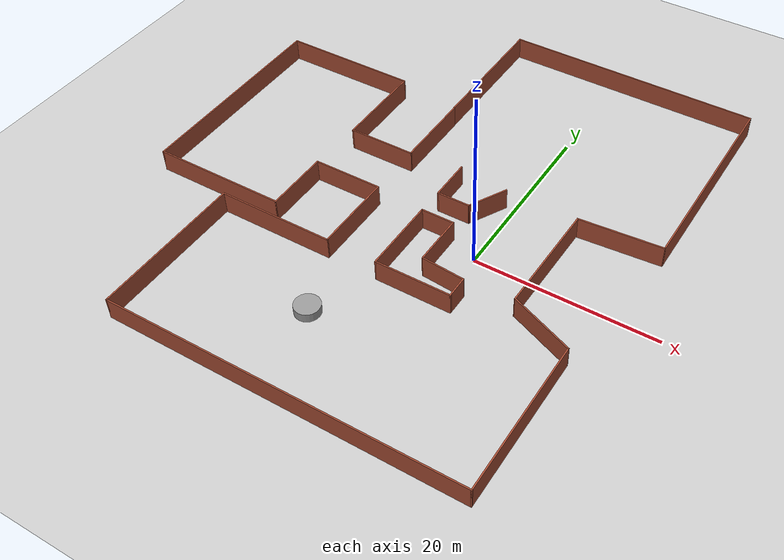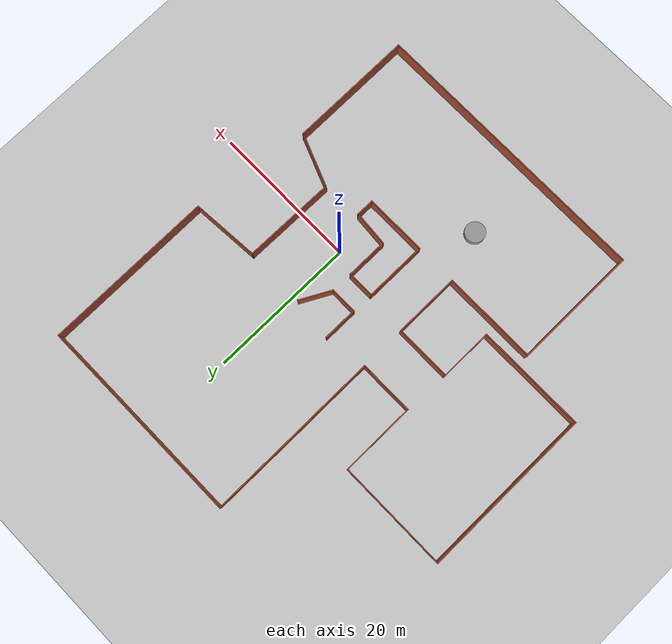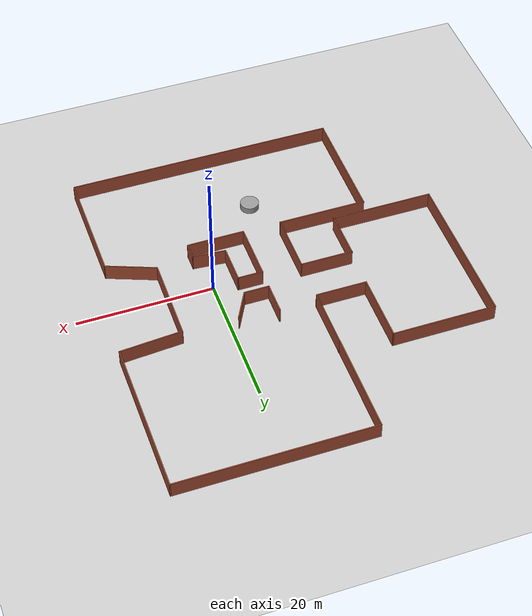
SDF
<sdf version="1.7">
 <world name="default">
  <light name="sun" type="directional">
   <pose>0 0 10 0 -0 0</pose>
   <diffuse>0.8 0.8 0.8 1</diffuse>
   <specular>0.2 0.2 0.2 1</specular>
   <attenuation>
    <range>1000</range>
    <constant>0.9</constant>
    <linear>0.01</linear>
    <quadratic>0.001</quadratic>
   </attenuation>
   <direction>-0.5 0.1 -0.9</direction>
   <spot><inner_angle>0</inner_angle><outer_angle>0</outer_angle><falloff>0</falloff></spot>
  </light>
  <model name="ground_plane">
   <static>1</static>
   <link name="link">
    <collision name="collision">
     <geometry><plane><normal>0 0 1</normal><size>100 100</size></plane></geometry>
     <surface>
      <contact><collide_bitmask>65535</collide_bitmask></contact>
      <friction><ode><mu>100</mu><mu2>50</mu2></ode></friction>
     </surface>
    </collision>
    <visual name="visual">
     <cast_shadows>0</cast_shadows>
     <geometry><plane><normal>0 0 1</normal><size>100 100</size></plane></geometry>
     <material>
      <script><uri>file://media/materials/scripts/gazebo.material</uri><name>Gazebo/Grey</name></script>
     </material>
    </visual>
   </link>
  </model>
  <gravity>0 0 -9.8</gravity>
  <magnetic_field>6e-06 2.3e-05 -4.2e-05</magnetic_field>
  <atmosphere type="adiabatic"/>
  <physics type="ode">
   <max_step_size>0.001</max_step_size>
   <real_time_factor>1</real_time_factor>
   <real_time_update_rate>1000</real_time_update_rate>
  </physics>
  <scene><ambient>0.4 0.4 0.4 1</ambient><background>0.7 0.7 0.7 1</background><shadows>1</shadows></scene>
  <audio><device>default</device></audio>
  <spherical_coordinates>
   <surface_model>EARTH_WGS84</surface_model>
   <latitude_deg>0</latitude_deg>
   <longitude_deg>0</longitude_deg>
   <elevation>0</elevation>
   <heading_deg>0</heading_deg>
  </spherical_coordinates>
  <model name="big_map_model">
   <pose>-9.41634 4.0467 0 0 -0 0</pose>
   <link name="Wall_21">
    <collision name="Wall_21_Collision">
     <geometry><box><size>9 0.15 2.5</size></box></geometry>
     <pose>0 0 1.25 0 -0 0</pose>
    </collision>
    <visual name="Wall_21_Visual">
     <pose>0 0 1.25 0 -0 0</pose>
     <geometry><box><size>9 0.15 2.5</size></box></geometry>
     <material>
      <script><uri>file://media/materials/scripts/gazebo.material</uri><name>Gazebo/Bricks</name></script>
      <ambient>1 1 1 1</ambient>
     </material>
     <meta><layer>0</layer></meta>
    </visual>
    <pose>-3.06516 8.3671 0 0 -0 -1.5708</pose>
   </link>
   <link name="Wall_22">
    <collision name="Wall_22_Collision">
     <geometry><box><size>7.5 0.15 2.5</size></box></geometry>
     <pose>0 0 1.25 0 -0 0</pose>
    </collision>
    <visual name="Wall_22_Visual">
     <pose>0 0 1.25 0 -0 0</pose>
     <geometry><box><size>7.5 0.15 2.5</size></box></geometry>
     <material>
      <script><uri>file://media/materials/scripts/gazebo.material</uri><name>Gazebo/Bricks</name></script>
      <ambient>1 1 1 1</ambient>
     </material>
     <meta><layer>0</layer></meta>
    </visual>
    <pose>-6.74016 3.9421 0 0 -0 3.14159</pose>
   </link>
   <link name="Wall_23">
    <collision name="Wall_23_Collision">
     <geometry><box><size>10.25 0.15 2.5</size></box></geometry>
     <pose>0 0 1.25 0 -0 0</pose>
    </collision>
    <visual name="Wall_23_Visual">
     <pose>0 0 1.25 0 -0 0</pose>
     <geometry><box><size>10.25 0.15 2.5</size></box></geometry>
     <material>
      <script><uri>file://media/materials/scripts/gazebo.material</uri><name>Gazebo/Bricks</name></script>
      <ambient>1 1 1 1</ambient>
     </material>
     <meta><layer>0</layer></meta>
    </visual>
    <pose>-10.4152 8.9921 0 0 -0 1.5708</pose>
   </link>
   <link name="Wall_24">
    <collision name="Wall_24_Collision">
     <geometry><box><size>15.25 0.15 2.5</size></box></geometry>
     <pose>0 0 1.25 0 -0 0</pose>
    </collision>
    <visual name="Wall_24_Visual">
     <pose>0 0 1.25 0 -0 0</pose>
     <geometry><box><size>15.25 0.15 2.5</size></box></geometry>
     <material>
      <script><uri>file://media/materials/scripts/gazebo.material</uri><name>Gazebo/Bricks</name></script>
      <ambient>1 1 1 1</ambient>
     </material>
     <meta><layer>0</layer></meta>
    </visual>
    <pose>-17.9652 14.0421 0 0 -0 3.14159</pose>
   </link>
   <link name="Wall_25">
    <collision name="Wall_25_Collision">
     <geometry><box><size>23.5 0.15 2.5</size></box></geometry>
     <pose>0 0 1.25 0 -0 0</pose>
    </collision>
    <visual name="Wall_25_Visual">
     <pose>0 0 1.25 0 -0 0</pose>
     <geometry><box><size>23.5 0.15 2.5</size></box></geometry>
     <material>
      <script><uri>file://media/materials/scripts/gazebo.material</uri><name>Gazebo/Bricks</name></script>
      <ambient>1 1 1 1</ambient>
     </material>
     <meta><layer>0</layer></meta>
    </visual>
    <pose>-25.5152 2.3671 0 0 -0 -1.5708</pose>
   </link>
   <link name="Wall_28">
    <collision name="Wall_28_Collision">
     <geometry><box><size>15 0.15 2.5</size></box></geometry>
     <pose>0 0 1.25 0 -0 0</pose>
    </collision>
    <visual name="Wall_28_Visual">
     <pose>0 0 1.25 0 -0 0</pose>
     <geometry><box><size>15 0.15 2.5</size></box></geometry>
     <material>
      <script><uri>file://media/materials/scripts/gazebo.material</uri><name>Gazebo/Bricks</name></script>
      <ambient>1 1 1 1</ambient>
     </material>
     <meta><layer>0</layer></meta>
    </visual>
    <pose>-18.0902 -9.3079 0 0 -0 0</pose>
   </link>
   <link name="Wall_29">
    <collision name="Wall_29_Collision">
     <geometry><box><size>7.25 0.15 2.5</size></box></geometry>
     <pose>0 0 1.25 0 -0 0</pose>
    </collision>
    <visual name="Wall_29_Visual">
     <pose>0 0 1.25 0 -0 0</pose>
     <geometry><box><size>7.25 0.15 2.5</size></box></geometry>
     <material>
      <script><uri>file://media/materials/scripts/gazebo.material</uri><name>Gazebo/Bricks</name></script>
      <ambient>1 1 1 1</ambient>
     </material>
     <meta><layer>0</layer></meta>
    </visual>
    <pose>-10.6652 -5.7579 0 0 -0 1.5708</pose>
   </link>
   <link name="Wall_30">
    <collision name="Wall_30_Collision">
     <geometry><box><size>7.75 0.15 2.5</size></box></geometry>
     <pose>0 0 1.25 0 -0 0</pose>
    </collision>
    <visual name="Wall_30_Visual">
     <pose>0 0 1.25 0 -0 0</pose>
     <geometry><box><size>7.75 0.15 2.5</size></box></geometry>
     <material>
      <script><uri>file://media/materials/scripts/gazebo.material</uri><name>Gazebo/Bricks</name></script>
      <ambient>1 1 1 1</ambient>
     </material>
     <meta><layer>0</layer></meta>
    </visual>
    <pose>-6.86516 -2.2079 0 0 -0 0</pose>
   </link>
   <link name="Wall_31">
    <collision name="Wall_31_Collision">
     <geometry><box><size>9 0.15 2.5</size></box></geometry>
     <pose>0 0 1.25 0 -0 0</pose>
    </collision>
    <visual name="Wall_31_Visual">
     <pose>0 0 1.25 0 -0 0</pose>
     <geometry><box><size>9 0.15 2.5</size></box></geometry>
     <material>
      <script><uri>file://media/materials/scripts/gazebo.material</uri><name>Gazebo/Bricks</name></script>
      <ambient>1 1 1 1</ambient>
     </material>
     <meta><layer>0</layer></meta>
    </visual>
    <pose>-3.06516 -6.6329 0 0 -0 -1.5708</pose>
   </link>
   <link name="Wall_32">
    <collision name="Wall_32_Collision">
     <geometry><box><size>13 0.15 2.5</size></box></geometry>
     <pose>0 0 1.25 0 -0 0</pose>
    </collision>
    <visual name="Wall_32_Visual">
     <pose>0 0 1.25 0 -0 0</pose>
     <geometry><box><size>13 0.15 2.5</size></box></geometry>
     <material>
      <script><uri>file://media/materials/scripts/gazebo.material</uri><name>Gazebo/Bricks</name></script>
      <ambient>1 1 1 1</ambient>
     </material>
     <meta><layer>0</layer></meta>
    </visual>
    <pose>-9.49016 -11.0579 0 0 -0 3.14159</pose>
   </link>
   <link name="Wall_33">
    <collision name="Wall_33_Collision">
     <geometry><box><size>17 0.15 2.5</size></box></geometry>
     <pose>0 0 1.25 0 -0 0</pose>
    </collision>
    <visual name="Wall_33_Visual">
     <pose>0 0 1.25 0 -0 0</pose>
     <geometry><box><size>17 0.15 2.5</size></box></geometry>
     <material>
      <script><uri>file://media/materials/scripts/gazebo.material</uri><name>Gazebo/Bricks</name></script>
      <ambient>1 1 1 1</ambient>
     </material>
     <meta><layer>0</layer></meta>
    </visual>
    <pose>-15.9152 -19.4829 0 0 -0 -1.5708</pose>
   </link>
   <link name="Wall_34">
    <collision name="Wall_34_Collision">
     <geometry><box><size>39.25 0.15 2.5</size></box></geometry>
     <pose>0 0 1.25 0 -0 0</pose>
    </collision>
    <visual name="Wall_34_Visual">
     <pose>0 0 1.25 0 -0 0</pose>
     <geometry><box><size>39.25 0.15 2.5</size></box></geometry>
     <material>
      <script><uri>file://media/materials/scripts/gazebo.material</uri><name>Gazebo/Bricks</name></script>
      <ambient>1 1 1 1</ambient>
     </material>
     <meta><layer>0</layer></meta>
    </visual>
    <pose>3.63484 -27.9079 0 0 -0 0</pose>
   </link>
   <link name="Wall_35">
    <collision name="Wall_35_Collision">
     <geometry><box><size>17 0.15 2.5</size></box></geometry>
     <pose>0 0 1.25 0 -0 0</pose>
    </collision>
    <visual name="Wall_35_Visual">
     <pose>0 0 1.25 0 -0 0</pose>
     <geometry><box><size>17 0.15 2.5</size></box></geometry>
     <material>
      <script><uri>file://media/materials/scripts/gazebo.material</uri><name>Gazebo/Bricks</name></script>
      <ambient>1 1 1 1</ambient>
     </material>
     <meta><layer>0</layer></meta>
    </visual>
    <pose>23.1848 -19.4829 0 0 -0 1.5708</pose>
   </link>
   <link name="Wall_37">
    <collision name="Wall_37_Collision">
     <geometry><box><size>8.5 0.15 2.5</size></box></geometry>
     <pose>0 0 1.25 0 -0 0</pose>
    </collision>
    <visual name="Wall_37_Visual">
     <pose>0 0 1.25 0 -0 0</pose>
     <geometry><box><size>8.5 0.15 2.5</size></box></geometry>
     <material>
      <script><uri>file://media/materials/scripts/gazebo.material</uri><name>Gazebo/Bricks</name></script>
      <ambient>1 1 1 1</ambient>
     </material>
     <meta><layer>0</layer></meta>
    </visual>
    <pose>2.58484 -6.8829 0 0 -0 1.5708</pose>
   </link>
   <link name="Wall_38">
    <collision name="Wall_38_Collision">
     <geometry><box><size>3.75 0.15 2.5</size></box></geometry>
     <pose>0 0 1.25 0 -0 0</pose>
    </collision>
    <visual name="Wall_38_Visual">
     <pose>0 0 1.25 0 -0 0</pose>
     <geometry><box><size>3.75 0.15 2.5</size></box></geometry>
     <material>
      <script><uri>file://media/materials/scripts/gazebo.material</uri><name>Gazebo/Bricks</name></script>
      <ambient>1 1 1 1</ambient>
     </material>
     <meta><layer>0</layer></meta>
    </visual>
    <pose>4.38484 -2.7079 0 0 -0 0</pose>
   </link>
   <link name="Wall_39">
    <collision name="Wall_39_Collision">
     <geometry><box><size>5.75 0.15 2.5</size></box></geometry>
     <pose>0 0 1.25 0 -0 0</pose>
    </collision>
    <visual name="Wall_39_Visual">
     <pose>0 0 1.25 0 -0 0</pose>
     <geometry><box><size>5.75 0.15 2.5</size></box></geometry>
     <material>
      <script><uri>file://media/materials/scripts/gazebo.material</uri><name>Gazebo/Bricks</name></script>
      <ambient>1 1 1 1</ambient>
     </material>
     <meta><layer>0</layer></meta>
    </visual>
    <pose>6.18484 -5.5079 0 0 -0 -1.5708</pose>
   </link>
   <link name="Wall_41">
    <collision name="Wall_41_Collision">
     <geometry><box><size>12.5993 0.15 2.5</size></box></geometry>
     <pose>0 0 1.25 0 -0 0</pose>
    </collision>
    <visual name="Wall_41_Visual">
     <pose>0 0 1.25 0 -0 0</pose>
     <geometry><box><size>12.5993 0.15 2.5</size></box></geometry>
     <material>
      <script><uri>file://media/materials/scripts/gazebo.material</uri><name>Gazebo/Bricks</name></script>
      <ambient>1 1 1 1</ambient>
     </material>
     <meta><layer>0</layer></meta>
    </visual>
    <pose>16.3728 -2.08388 0 0 -0 1.55667</pose>
   </link>
   <link name="Wall_43">
    <collision name="Wall_43_Collision">
     <geometry><box><size>4.60828 0.15 2.5</size></box></geometry>
     <pose>0 0 1.25 0 -0 0</pose>
    </collision>
    <visual name="Wall_43_Visual">
     <pose>0 0 1.25 0 -0 0</pose>
     <geometry><box><size>4.60828 0.15 2.5</size></box></geometry>
     <material>
      <script><uri>file://media/materials/scripts/gazebo.material</uri><name>Gazebo/Bricks</name></script>
      <ambient>1 1 1 1</ambient>
     </material>
     <meta><layer>0</layer></meta>
    </visual>
    <pose>7.31029 2.17402 0 0 -0 -2.06149</pose>
   </link>
   <link name="Wall_44">
    <collision name="Wall_44_Collision">
     <geometry><box><size>3.75 0.15 2.5</size></box></geometry>
     <pose>0 0 1.25 0 -0 0</pose>
    </collision>
    <visual name="Wall_44_Visual">
     <pose>0 0 1.25 0 -0 0</pose>
     <geometry><box><size>3.75 0.15 2.5</size></box></geometry>
     <material>
      <script><uri>file://media/materials/scripts/gazebo.material</uri><name>Gazebo/Bricks</name></script>
      <ambient>1 1 1 1</ambient>
     </material>
     <meta><layer>0</layer></meta>
    </visual>
    <pose>4.45984 0.2079 0 0 -0 3.14159</pose>
   </link>
   <link name="Wall_47">
    <collision name="Wall_47_Collision">
     <geometry><box><size>4.75 0.15 2.5</size></box></geometry>
     <pose>0 0 1.25 0 -0 0</pose>
    </collision>
    <visual name="Wall_47_Visual">
     <pose>0 0 1.25 0 -0 0</pose>
     <geometry><box><size>4.75 0.15 2.5</size></box></geometry>
     <material>
      <script><uri>file://media/materials/scripts/gazebo.material</uri><name>Gazebo/Bricks</name></script>
      <ambient>1 1 1 1</ambient>
     </material>
     <meta><layer>0</layer></meta>
    </visual>
    <pose>2.65984 2.5079 0 0 -0 1.5708</pose>
   </link>
   <link name="Wall_49">
    <collision name="Wall_49_Collision">
     <geometry><box><size>23.25 0.15 2.5</size></box></geometry>
     <pose>0 0 1.25 0 -0 0</pose>
    </collision>
    <visual name="Wall_49_Visual">
     <pose>0 0 1.25 0 -0 0</pose>
     <geometry><box><size>23.25 0.15 2.5</size></box></geometry>
     <material>
      <script><uri>file://media/materials/scripts/gazebo.material</uri><name>Gazebo/Bricks</name></script>
      <ambient>1 1 1 1</ambient>
     </material>
     <meta><layer>0</layer></meta>
    </visual>
    <pose>25.5098 16.3579 0 0 -0 1.5708</pose>
   </link>
   <link name="Wall_50">
    <collision name="Wall_50_Collision">
     <geometry><box><size>28.75 0.15 2.5</size></box></geometry>
     <pose>0 0 1.25 0 -0 0</pose>
    </collision>
    <visual name="Wall_50_Visual">
     <pose>0 0 1.25 0 -0 0</pose>
     <geometry><box><size>28.75 0.15 2.5</size></box></geometry>
     <material>
      <script><uri>file://media/materials/scripts/gazebo.material</uri><name>Gazebo/Bricks</name></script>
      <ambient>1 1 1 1</ambient>
     </material>
     <meta><layer>0</layer></meta>
    </visual>
    <pose>11.2098 27.9079 0 0 -0 3.14159</pose>
   </link>
   <link name="Wall_51">
    <collision name="Wall_51_Collision">
     <geometry><box><size>15.25 0.15 2.5</size></box></geometry>
     <pose>0 0 1.25 0 -0 0</pose>
    </collision>
    <visual name="Wall_51_Visual">
     <pose>0 0 1.25 0 -0 0</pose>
     <geometry><box><size>15.25 0.15 2.5</size></box></geometry>
     <material>
      <script><uri>file://media/materials/scripts/gazebo.material</uri><name>Gazebo/Bricks</name></script>
      <ambient>1 1 1 1</ambient>
     </material>
     <meta><layer>0</layer></meta>
    </visual>
    <pose>-3.09016 20.3579 0 0 -0 -1.5708</pose>
   </link>
   <link name="Wall_53">
    <collision name="Wall_53_Collision">
     <geometry><box><size>9.22371 0.15 2.5</size></box></geometry>
     <pose>0 0 1.25 0 -0 0</pose>
    </collision>
    <visual name="Wall_53_Visual">
     <pose>0 0 1.25 0 -0 0</pose>
     <geometry><box><size>9.22371 0.15 2.5</size></box></geometry>
     <material>
      <script><uri>file://media/materials/scripts/gazebo.material</uri><name>Gazebo/Bricks</name></script>
      <ambient>1 1 1 1</ambient>
     </material>
     <meta><layer>0</layer></meta>
    </visual>
    <pose>20.9853 4.47402 0 0 -0 0.07366</pose>
   </link>
   <link name="Wall_55">
    <collision name="Wall_55_Collision">
     <geometry><box><size>8.5 0.15 2.5</size></box></geometry>
     <pose>0 0 1.25 0 -0 0</pose>
    </collision>
    <visual name="Wall_55_Visual">
     <pose>0 0 1.25 0 -0 0</pose>
     <geometry><box><size>8.5 0.15 2.5</size></box></geometry>
     <material>
      <script><uri>file://media/materials/scripts/gazebo.material</uri><name>Gazebo/Bricks</name></script>
      <ambient>1 1 1 1</ambient>
     </material>
     <meta><layer>0</layer></meta>
    </visual>
    <pose>6.75984 -11.0579 0 0 -0 0</pose>
   </link>
   <link name="Wall_56">
    <collision name="Wall_56_Collision">
     <geometry><box><size>2.5 0.15 2.5</size></box></geometry>
     <pose>0 0 1.25 0 -0 0</pose>
    </collision>
    <visual name="Wall_56_Visual">
     <pose>0 0 1.25 0 -0 0</pose>
     <geometry><box><size>2.5 0.15 2.5</size></box></geometry>
     <material>
      <script><uri>file://media/materials/scripts/gazebo.material</uri><name>Gazebo/Bricks</name></script>
      <ambient>1 1 1 1</ambient>
     </material>
     <meta><layer>0</layer></meta>
    </visual>
    <pose>10.9348 -9.8829 0 0 -0 1.5708</pose>
   </link>
   <link name="Wall_57">
    <collision name="Wall_57_Collision">
     <geometry><box><size>4.91681 0.15 2.5</size></box></geometry>
     <pose>0 0 1.25 0 -0 0</pose>
    </collision>
    <visual name="Wall_57_Visual">
     <pose>0 0 1.25 0 -0 0</pose>
     <geometry><box><size>4.91681 0.15 2.5</size></box></geometry>
     <material>
      <script><uri>file://media/materials/scripts/gazebo.material</uri><name>Gazebo/Bricks</name></script>
      <ambient>1 1 1 1</ambient>
     </material>
     <meta><layer>0</layer></meta>
    </visual>
    <pose>8.55984 -8.5079 0 0 -0 3.05758</pose>
   </link>
   <link name="Wall_59">
    <collision name="Wall_59_Collision">
     <geometry><box><size>7.57782 0.15 2.5</size></box></geometry>
     <pose>0 0 1.25 0 -0 0</pose>
    </collision>
    <visual name="Wall_59_Visual">
     <pose>0 0 1.25 0 -0 0</pose>
     <geometry><box><size>7.57782 0.15 2.5</size></box></geometry>
     <material>
      <script><uri>file://media/materials/scripts/gazebo.material</uri><name>Gazebo/Bricks</name></script>
      <ambient>1 1 1 1</ambient>
     </material>
     <meta><layer>0</layer></meta>
    </visual>
    <pose>19.7348 -9.6829 0 0 -0 -0.379256</pose>
   </link>
   <static>1</static>
  </model>
  <model name="unit_cylinder">
   <pose>-10.059 -13.7724 0.499996 3e-06 -3e-06 1.9e-05</pose>
   <link name="link">
    <inertial>
     <mass>1</mass>
     <inertia><ixx>0.145833</ixx><ixy>0</ixy><ixz>0</ixz><iyy>0.145833</iyy><iyz>0</iyz><izz>0.125</izz></inertia>
    </inertial>
    <collision name="collision">
     <geometry><cylinder><radius>1.36751</radius><length>1</length></cylinder></geometry>
    </collision>
    <visual name="visual">
     <geometry><cylinder><radius>1.36751</radius><length>1</length></cylinder></geometry>
     <material>
      <script><name>Gazebo/Grey</name><uri>file://media/materials/scripts/gazebo.material</uri></script>
     </material>
    </visual>
   </link>
  </model>
 </world>
</sdf>
